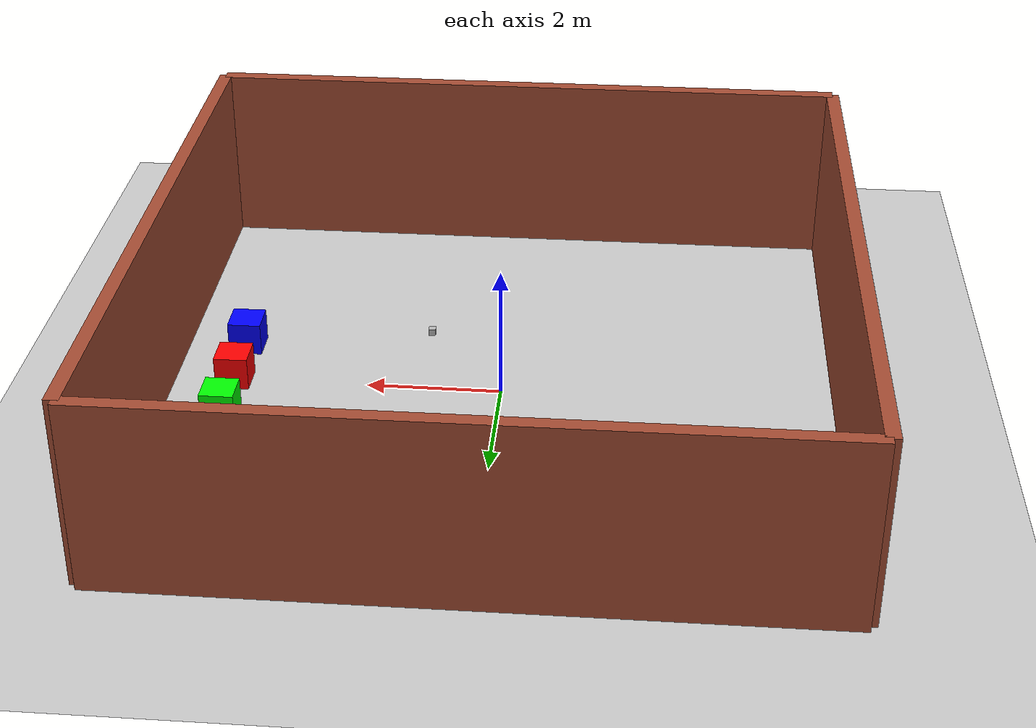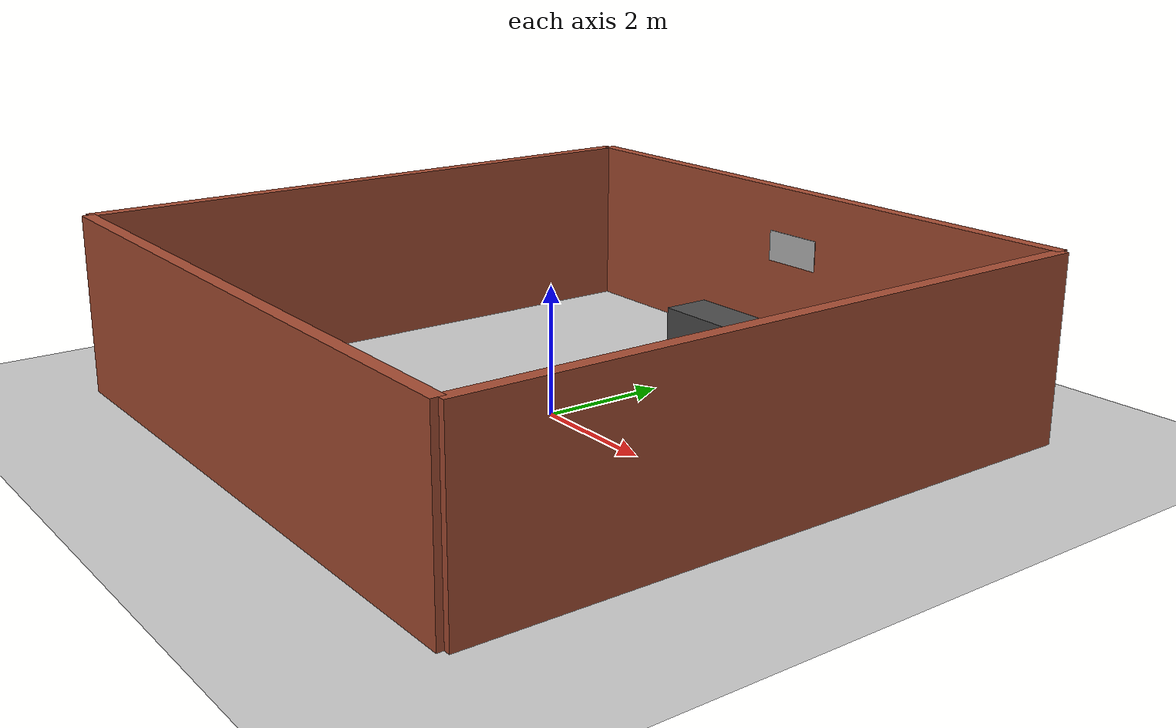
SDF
<sdf version="1.6">
 <world name="ufba_modificado">
  <light name="sun" type="directional">
   <pose>0 0 10 0 -0 0</pose>
   <diffuse>0.8 0.8 0.8 1</diffuse>
   <specular>0.2 0.2 0.2 1</specular>
   <attenuation>
    <range>1000</range>
    <constant>0.9</constant>
    <linear>0.01</linear>
    <quadratic>0.001</quadratic>
   </attenuation>
   <direction>-0.5 0.1 -0.9</direction>
  </light>
  <physics type="ode">
   <max_step_size>0.002</max_step_size>
   <real_time_factor>1</real_time_factor>
   <real_time_update_rate>500</real_time_update_rate>
  </physics>
  <scene><ambient>0.4 0.4 0.4 1</ambient><background>0.7 0.7 0.7 1</background><shadows>1</shadows></scene>
  <include><uri>model://ground_plane</uri></include>
  <model name="parede_norte">
   <static>true</static>
   <pose>0 5 1.4 0 0 0</pose>
   <link name="link">
    <collision name="collision"><geometry><box><size>10 0.2 2.8</size></box></geometry></collision>
    <visual name="visual">
     <geometry><box><size>10 0.2 2.8</size></box></geometry>
     <material>
      <script><uri>file://media/materials/scripts/gazebo.material</uri><name>Gazebo/Bricks</name></script>
     </material>
    </visual>
   </link>
  </model>
  <model name="parede_sul">
   <static>true</static>
   <pose>0 -5 1.4 0 0 0</pose>
   <link name="link">
    <collision name="collision"><geometry><box><size>10 0.2 2.8</size></box></geometry></collision>
    <visual name="visual">
     <geometry><box><size>10 0.2 2.8</size></box></geometry>
     <material>
      <script><uri>file://media/materials/scripts/gazebo.material</uri><name>Gazebo/Bricks</name></script>
     </material>
    </visual>
   </link>
  </model>
  <model name="parede_leste">
   <static>true</static>
   <pose>5 0 1.4 0 0 1.5707</pose>
   <link name="link">
    <collision name="collision"><geometry><box><size>10 0.2 2.8</size></box></geometry></collision>
    <visual name="visual">
     <geometry><box><size>10 0.2 2.8</size></box></geometry>
     <material>
      <script><uri>file://media/materials/scripts/gazebo.material</uri><name>Gazebo/Bricks</name></script>
     </material>
    </visual>
   </link>
  </model>
  <model name="parede_oeste">
   <static>true</static>
   <pose>-5 0 1.4 0 0 1.5707</pose>
   <link name="link">
    <collision name="collision"><geometry><box><size>10 0.2 2.8</size></box></geometry></collision>
    <visual name="visual">
     <geometry><box><size>10 0.2 2.8</size></box></geometry>
     <material>
      <script><uri>file://media/materials/scripts/gazebo.material</uri><name>Gazebo/Bricks</name></script>
     </material>
    </visual>
   </link>
  </model>
  <model name="bancada_robo">
   <static>true</static>
   <pose>0 3.5 0.45 0 0 3.1415</pose>
   <link name="link">
    <collision name="collision"><geometry><box><size>2.0 0.8 0.9</size></box></geometry></collision>
    <visual name="visual">
     <geometry><box><size>2.0 0.8 0.9</size></box></geometry>
     <material>
      <script><uri>file://media/materials/scripts/gazebo.material</uri><name>Gazebo/DarkGrey</name></script>
     </material>
    </visual>
   </link>
  </model>
  <model name="my_camera">
   <pose>1 0 1 0 0 0</pose>
   <static>true</static>
   <link name="link">
    <visual name="visual"><geometry><box><size>0.1 0.1 0.1</size></box></geometry></visual>
    <sensor name="camera" type="camera">
     <camera name="head">
      <horizontal_fov>1.3962634</horizontal_fov>
      <image><width>800</width><height>800</height><format>R8G8B8</format></image>
      <clip><near>0.02</near><far>300</far></clip>
     </camera>
     <plugin name="camera_controller" filename="libgazebo_ros_camera.so">
      <alwaysOn>true</alwaysOn>
      <updateRate>30.0</updateRate>
      <cameraName>ufba_camera</cameraName>
      <imageTopicName>image_raw</imageTopicName>
      <cameraInfoTopicName>camera_info</cameraInfoTopicName>
      <frameName>camera_link</frameName>
      <hackBaseline>0.07</hackBaseline>
      <distortionK1>0.0</distortionK1>
      <distortionK2>0.0</distortionK2>
      <distortionK3>0.0</distortionK3>
      <distortionT1>0.0</distortionT1>
      <distortionT2>0.0</distortionT2>
     </plugin>
    </sensor>
   </link>
  </model>
  <model name="quadrado_vermelho">
   <pose>4 0 0.25 0 0 0</pose>
   <static>true</static>
   <link name="link">
    <visual name="visual">
     <geometry><box><size>0.5 0.5 0.5</size></box></geometry>
     <material><ambient>1 0 0 1</ambient><diffuse>1 0 0 1</diffuse></material>
    </visual>
   </link>
  </model>
  <model name="quadrado_verde">
   <pose>4 1 0.25 0 0 0</pose>
   <static>true</static>
   <link name="link">
    <visual name="visual">
     <geometry><box><size>0.5 0.5 0.5</size></box></geometry>
     <material><ambient>0 1 0 1</ambient><diffuse>0 1 0 1</diffuse></material>
    </visual>
   </link>
  </model>
  <model name="quadrado_azul">
   <pose>4 -1 0.25 0 0 0</pose>
   <static>true</static>
   <link name="link">
    <visual name="visual">
     <geometry><box><size>0.5 0.5 0.5</size></box></geometry>
     <material><ambient>0 0 1 1</ambient><diffuse>0 0 1 1</diffuse></material>
    </visual>
   </link>
  </model>
  <model name="placa_ufba_na_parede">
   <static>true</static>
   <pose>0 4.89 1.8 0 0 0</pose>
   <link name="link">
    <visual name="visual">
     <geometry><box><size>1.024 0.01 0.512</size></box></geometry>
     <material>
      <script><uri>file://materials/scripts/ufba_logo.material</uri><name>Ufba/Logo</name></script>
     </material>
    </visual>
   </link>
  </model>
 </world>
</sdf>
